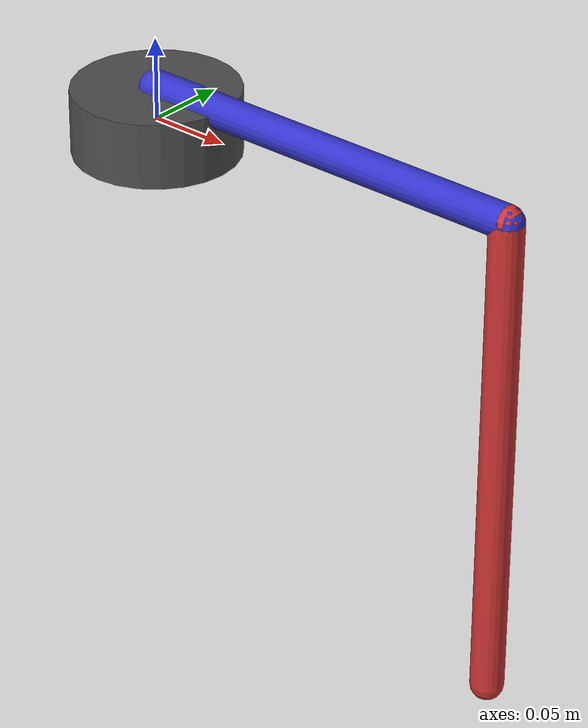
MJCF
<mujoco model="furuta_pendulum">
    <compiler angle="radian" coordinate="local"/>
    <option timestep="0.002" gravity="0 0 -9.81" integrator="RK4"/>

    <default>
        <joint damping="0.01"/>
        <geom friction="0.5 0.5 0.5"/>
    </default>

<keyframe>
    <!-- Hanging down -->
    <key name="down"
         qpos="0 0"
         qvel="0 0"/>

    <!-- Near upright -->
    <key name="upright"
         qpos="0 3.1416"
         qvel="0 0"/>
</keyframe>

    <worldbody>

        <!-- Base -->
        <body name="base" pos="0 0 0">
            <geom type="cylinder" size="0.05 0.02" rgba="0.3 0.3 0.3 1"/>

            <!-- Rotary Arm -->
            <body name="arm" pos="0 0 0.02">
                <joint name="arm_joint"
                        type="hinge"
                        axis="0 0 1"
                        limited="true"
                        range="-6.283 6.283"
                        armature="0"/>

                <geom type="capsule"
                      fromto="0 0 0 0.25 0 0"
                      size="0.01"
                      rgba="0.2 0.2 0.8 1"/>

                <!-- Pendulum -->
                <body name="pendulum" pos="0.25 0 0">
                    <joint name="pendulum_joint"
                           type="hinge"
                           axis="1 0 0"
                           limited="true"
                           range="-3.1416 3.1416"/>

                    <geom type="capsule"
                          fromto="0 0 0 0 0 -0.3"
                          size="0.01"
                          rgba="0.8 0.2 0.2 1"/>

                </body>

                <inertial pos="0.125 0 0"
                          mass="0.1"
                          diaginertia="0.002 0.002 0.0002"/>
            </body>
        </body>
    </worldbody>

    <actuator>
        <motor joint="arm_joint"
               ctrlrange="-12 12"
               gear="1"/>
    </actuator>

    <sensor>
        <jointpos joint="arm_joint"/>
        <jointvel joint="arm_joint"/>
        <jointpos joint="pendulum_joint"/>
        <jointvel joint="pendulum_joint"/>
    </sensor>

</mujoco>
